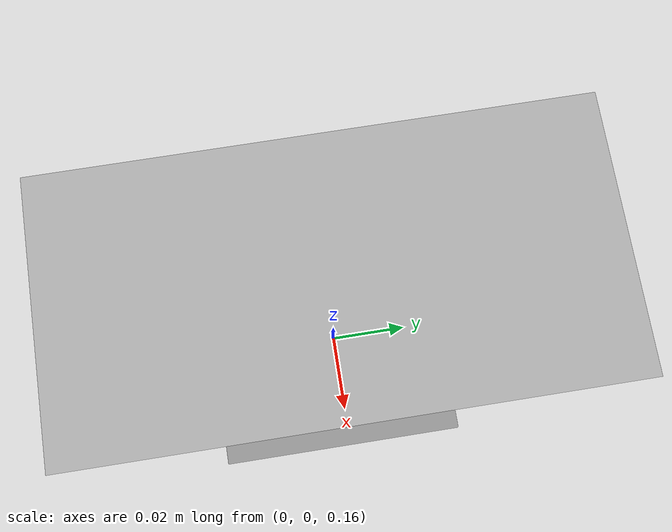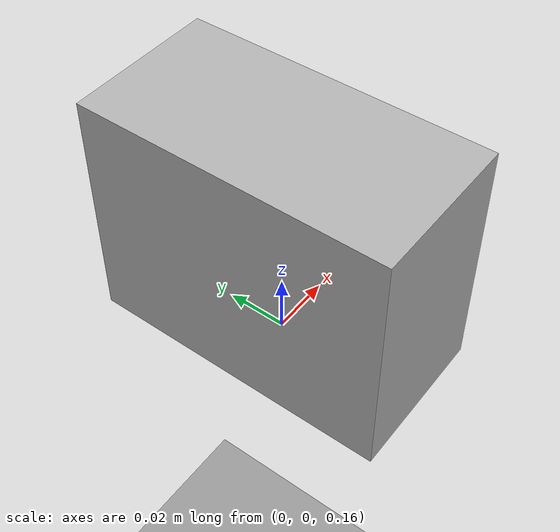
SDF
<?xml version="1.0"?>
<sdf version="1.6">
  <world name="default">
		<scene>
      <ambient>1.0 1.0 1.0 1</ambient>
      <background>1.0 1.0 1.0 1</background>
      <shadows>false</shadows>
    </scene>

  	<plugin name="contact_world_plugin" filename="libContactWorldPlugin.so">
      <topic>grasp/contact/world</topic>
    </plugin>

    <physics type="dart">
      <real_time_update_rate>0.000000</real_time_update_rate>
    </physics>

    <include>
      <uri>model://sun</uri>
    </include>

    <include>
      <uri>model://my_plane</uri>
    </include>

    <include>
      <uri>model://red_box</uri>
			<pose>0 0 0.2 0 0 0</pose>
			<static>0</static>
		</include>

    <gravity>0 0 0</gravity>

  </world>
</sdf>

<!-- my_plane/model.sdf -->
<sdf version="1.5">
    <model name="ground_plane">
        <static>true</static>
        <link name="link">
            <collision name="collision">
                <geometry>
                    <plane>
                        <normal>0 0 1</normal>
                        <size>100 100</size>
                    </plane>
                </geometry>
                <surface>
                    <friction>
                        <ode>
                            <mu>0.01</mu>
                            <mu2>0.01</mu2>
                        </ode>
                    </friction>
                </surface>
            </collision>
            <visual name="visual">
                <cast_shadows>false</cast_shadows>
                <geometry>
                    <plane>
                        <normal>0 0 1</normal>
                        <size>100 100</size>
                    </plane>
                </geometry>
                <material>
                    <script>
                        <uri>file://media/materials/scripts/gazebo.material</uri>
                        <name>Gazebo/Gray</name>
                    </script>
                </material>
            </visual>
        </link>
    </model>
</sdf>

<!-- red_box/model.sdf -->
<sdf version='1.6'>
  <model name='red_box'>
    <link name='link'>
      <inertial>
        <mass>0.01</mass>
        <inertia>
          <ixx>0</ixx>
          <ixy>0</ixy>
          <ixz>0</ixz>
          <iyy>0</iyy>
          <iyz>0</iyz>
          <izz>0</izz>
        </inertia>
        <pose frame=''>0 0 0 0 -0 0</pose>
      </inertial>
      <self_collide>0</self_collide>
      <enable_wind>0</enable_wind>
      <kinematic>0</kinematic>
      <pose frame=''>0 0 0 0 0 0</pose>
      <gravity>1</gravity>
      <visual name='visual'>
        <geometry>
          <box>
            <size>0.05 0.1 0.08</size>
          </box>
        </geometry>
        <material>
          <shader type='pixel'>
            <normal_map>__default__</normal_map>
          </shader>
          <ambient>1 0 0 1</ambient>
          <diffuse>0.7 0.7 0.7 1</diffuse>
          <specular>0.01 0.01 0.01 1</specular>
          <emissive>0 0 0 1</emissive>
        </material>
        <pose frame=''>0 0 0 0 -0 0</pose>
        <transparency>0</transparency>
        <cast_shadows>1</cast_shadows>
      </visual>
      <collision name='collision'>
        <laser_retro>0</laser_retro>
        <max_contacts>10</max_contacts>
        <pose frame=''>0 0 0 0 -0 0</pose>
        <geometry>
          <box>
            <size>0.05 0.1 0.08</size>
          </box>
        </geometry>
        <surface>
          <friction>
            <ode>
              <mu>1</mu>
              <mu2>1</mu2>
              <fdir1>0 0 0</fdir1>
              <slip1>0</slip1>
              <slip2>0</slip2>
            </ode>
            <torsional>
              <coefficient>1</coefficient>
              <patch_radius>0</patch_radius>
              <surface_radius>0</surface_radius>
              <use_patch_radius>1</use_patch_radius>
              <ode>
                <slip>0</slip>
              </ode>
            </torsional>
          </friction>
          <bounce>
            <restitution_coefficient>0</restitution_coefficient>
            <threshold>1e+06</threshold>
          </bounce>
          <contact>
            <collide_without_contact>0</collide_without_contact>
            <collide_without_contact_bitmask>1</collide_without_contact_bitmask>
            <collide_bitmask>1</collide_bitmask>
            <ode>
              <soft_cfm>0</soft_cfm>
              <soft_erp>0.2</soft_erp>
              <kp>1e+13</kp>
              <kd>1</kd>
              <max_vel>0.01</max_vel>
              <min_depth>0</min_depth>
            </ode>
            <bullet>
              <split_impulse>1</split_impulse>
              <split_impulse_penetration_threshold>-0.01</split_impulse_penetration_threshold>
              <soft_cfm>0</soft_cfm>
              <soft_erp>0.2</soft_erp>
              <kp>1e+13</kp>
              <kd>1</kd>
            </bullet>
          </contact>
        </surface>
      </collision>
    </link>
    <static>0</static>
    <allow_auto_disable>1</allow_auto_disable>
  </model>
</sdf>
